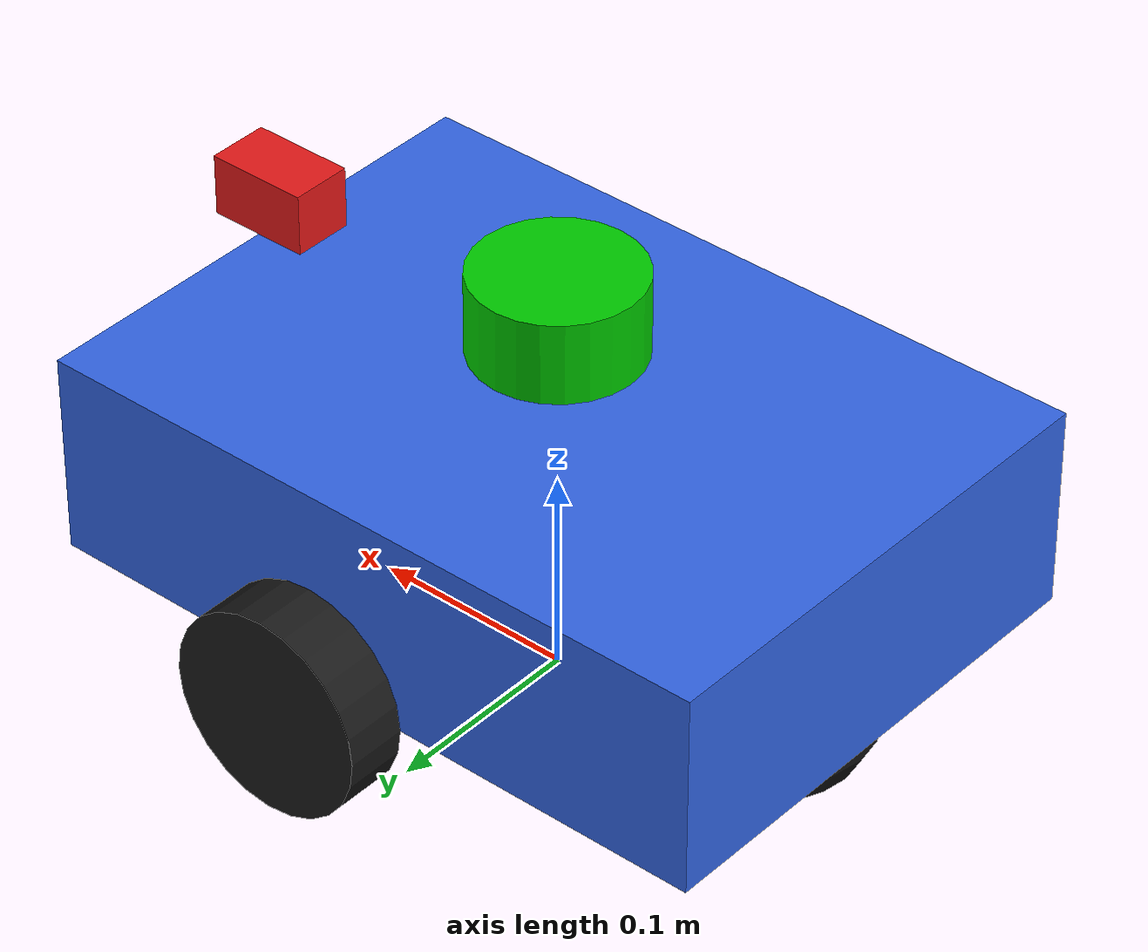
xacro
<?xml version="1.0"?>

<robot xmlns:xacro="http://www.ros.org/wiki/xacro"
    name="furbo">

        <material name="blue">
            <color rgba="0.2 0.4 0.9 1"/>
        </material>

        <material name="black">
            <color rgba="0.1 0.1 0.1 1"/>
        </material>

        <material name="green">
            <color rgba="0.0 0.8 0.0 1"/>
        </material>

        <material name="red">
            <color rgba="0.9 0.1 0.1 1"/>
        </material>

        <material name="orange">
            <color rgba="1.0 0.5 0.0 1"/>
        </material>

        <material name="yellow">
            <color rgba="1.0 1.0 0.0 1"/>
        </material>

        <material name="gray">
            <color rgba="0.6 0.6 0.6 1"/>
        </material>

       <link name="base_footprint"/>

       <joint name="base_footprint_joint" type="fixed">
            <parent link="base_footprint"/>
            <child link="base_link"/>
            <origin xyz="0 0 0.10"/>
       </joint>

       <link name="base_link">
            <visual>
                <origin xyz="0 0 0" rpy="0 0 0"/>
                <geometry>
                <box size="0.35 0.25 0.10"/>
                </geometry>
                <material name="blue"/>
            </visual>

            <collision>
                <origin xyz="0 0 0" rpy="0 0 0"/>
                <geometry>
                <box size="0.35 0.25 0.10"/>
                </geometry>
            </collision>

            <inertial>
                <origin xyz="0 0 0" rpy="0 0 0"/>
                <mass value="5.0"/>
                <inertia ixx="0.0302"
                ixy="0.0"
                ixz="0.0"
                iyy="0.0552"
                iyz="0.0"
                izz="0.0771"/>
            </inertial>
       </link>

       <link name="left_wheel">
            <visual>
                <origin xyz="0 0 0" rpy="1.5708 0 0"/>
                <geometry>
                    <cylinder radius="0.05" length="0.03"/>
                </geometry>
                <material name="black"/>
            </visual>

            <collision>
                <origin xyz="0 0 0" rpy="1.5708 0 0"/>
                <geometry>
                <cylinder radius="0.05" length="0.03"/>
                </geometry>
            </collision>

            <inertial>
                <mass value="0.3"/>
                <origin xyz="0 0 0"/>
                <inertia
                    ixx="0.0005"
                    ixy="0"
                    ixz="0"
                    iyy="0.0005"
                    iyz="0"
                    izz="0.0005"/>
            </inertial>
        </link>

       <joint name="left_wheel_joint" type="continuous">
            <parent link="base_link"/>
            <child link="left_wheel"/>
            <origin xyz="0.03 0.14 -0.05"/>
            <axis xyz="0 1 0"/>
            <limit effort="20" velocity="20"/>
            <dynamics damping="0.0" friction="0.0"/>
        </joint>

        <gazebo reference="left_wheel">
            <collision>
                <surface>
                    <friction>
                        <ode>
                            <mu>1.0</mu>
                            <mu2>1.0</mu2>
                        </ode>
                    </friction>
                </surface>
            </collision>
        </gazebo>

       <link name="right_wheel">
            <visual>
                <origin xyz="0 0 0" rpy="1.5708 0 0"/>

                <geometry>
                    <cylinder radius="0.05" length="0.03"/>
                </geometry>

                <material name="black"/>
            </visual>

            <collision>
                <origin xyz="0 0 0" rpy="1.5708 0 0"/>
                <geometry>
                    <cylinder radius="0.05" length="0.03"/>
                </geometry>
            </collision>

            <inertial>
                <mass value="0.3"/>
                <origin xyz="0 0 0"/>
                <inertia
                    ixx="0.0005"
                    ixy="0"
                    ixz="0"
                    iyy="0.0005"
                    iyz="0"
                    izz="0.0005"/>
            </inertial>
       </link>

       <joint name="right_wheel_joint" type="continuous">
            <parent link="base_link"/>
            <child link="right_wheel"/>
            <origin xyz="0.03 -0.14 -0.05"/>
            <axis xyz="0 1 0"/>
            <limit effort="20" velocity="20"/>
            <dynamics damping="0.0" friction="0.0"/>
        </joint>

        <gazebo reference="left_wheel">
            <collision>
                <surface>
                    <friction>
                        <ode>
                            <mu>1.0</mu>
                            <mu2>1.0</mu2>
                        </ode>
                    </friction>
                </surface>
            </collision>
        </gazebo>

       <link name="caster_wheel">
            <visual>
                <origin xyz="0 0 0"/>
                <geometry>
                    <sphere radius="0.05"/>
                </geometry>
                <material name="black"/>
            </visual>

            <collision>
                <origin xyz="0 0 0"/>
                <geometry>
                    <sphere radius="0.05"/>
                </geometry>
            </collision>

            <inertial>
                <origin xyz="0 0 0"/>
                <mass value="0.1"/>
                <inertia
                    ixx="0.0001"
                    ixy="0"
                    ixz="0"
                    iyy="0.0001"
                    iyz="0"
                    izz="0.0001"/>
            </inertial>
       </link>

       <joint name="caster_joint" type="fixed">
            <parent link="base_link"/>
            <child link="caster_wheel"/>
            <origin xyz="-0.12 0 -0.05"/>
       </joint>

       <link name="lidar_link">
            <visual>
                <origin xyz="0 0 0"/>

                <geometry>
                    <cylinder radius="0.04" length="0.04"/>
                </geometry>

                <material name="green"/>
            </visual>

            <collision>
                <origin xyz="0 0 0"/>

                <geometry>
                    <cylinder radius="0.04" length="0.04"/>
                </geometry>
            </collision>

            <inertial>
                <origin xyz="0 0 0"/>

                <mass value="0.2"/>

                <inertia
                    ixx="0.0002"
                    ixy="0"
                    ixz="0"
                    iyy="0.0002"
                    iyz="0"
                    izz="0.0002"/>
            </inertial>
       </link>

       <joint name="lidar_joint" type="fixed">
            <parent link="base_link"/>
            <child link="lidar_link"/>
            <origin xyz="0.00 0 0.09"/>
       </joint>

       <gazebo reference="lidar_link">
           <sensor name="lidar" type="gpu_lidar">
               <topic>scan</topic>
               <update_rate>10</update_rate>
               <lidar>
                   <scan>
                       <horizontal>
                           <samples>360</samples>
                           <min_angle>-3.14159</min_angle>
                           <max_angle>3.14159</max_angle>
                       </horizontal>
                   </scan>
                   <range>
                       <min>0.12</min>
                       <max>10.0</max>
                   </range>
               </lidar>
               <always_on>true</always_on>
           </sensor>
       </gazebo>

       <link name="imu_link">
            <visual>
                <geometry>
                    <box size="0.03 0.03 0.01"/>
                </geometry>
                <material name="orange"/>
            </visual>

            <collision>
                <geometry>
                    <box size="0.03 0.03 0.01"/>
                </geometry>
            </collision>

            <inertial>
                <mass value="0.05"/>

                <origin xyz="0 0 0"/>

                <inertia
                    ixx="0.00002"
                    ixy="0"
                    ixz="0"
                    iyy="0.00002"
                    iyz="0"
                    izz="0.00002"/>
            </inertial>
       </link>

       <joint name="imu_joint" type="fixed">
            <parent link="base_link"/>
            <child link="imu_link"/>
            <origin xyz="0 0 0.03"/>
       </joint>

       <gazebo reference="imu_link">
            <sensor name="imu_sensor" type="imu">
                <topic>imu</topic>
                <update_rate>100</update_rate>
                <always_on>true</always_on>
            </sensor>
        </gazebo>

       <link name="camera_link">
            <visual>
                <geometry>
                    <box size="0.05 0.03 0.03"/>
                </geometry>
                <material name="red"/>
            </visual>

            <inertial>
                <mass value="0.10"/>
                <origin xyz="0 0 0"/>
                <inertia
                    ixx="0.0001"
                    ixy="0"
                    ixz="0"
                    iyy="0.0001"
                    iyz="0"
                    izz="0.0001"/>
            </inertial>
       </link>

       <joint name="camera_joint" type="fixed">
            <parent link="base_link"/>
            <child link="camera_link"/>
            <origin xyz="0.16 0 0.08"/>
       </joint>

       <gazebo reference="camera_link">
            <sensor name="camera" type="camera">
                <pose>0.03 0 0 0 0 0</pose>
                <topic>camera/image_raw</topic>
                <update_rate>30</update_rate>
                <camera>
                    <horizontal_fov>1.047</horizontal_fov>
                    <image>
                        <width>640</width>
                        <height>480</height>
                    </image>
                    <clip>
                        <near>0.1</near>
                        <far>100</far>
                    </clip>
                </camera>
                <always_on>true</always_on>
            </sensor>
        </gazebo>

       <link name="camera_optical_frame"/>

       <joint name="camera_optical_joint" type="fixed">
            <parent link="camera_link"/>
            <child link="camera_optical_frame"/>
            <origin xyz="0 0 0"
                rpy="-1.5708 0 -1.5708"/>
       </joint>

       <ros2_control name="furbo_system" type="system">
            <hardware>
                <plugin>gz_ros2_control/GazeboSimSystem</plugin>
            </hardware>

            <joint name="left_wheel_joint">
                <command_interface name="velocity"/>
                <state_interface name="position"/>
                <state_interface name="velocity"/>
            </joint>

            <joint name="right_wheel_joint">
                <command_interface name="velocity"/>
                <state_interface name="position"/>
                <state_interface name="velocity"/>
            </joint>
        </ros2_control>

        <gazebo>
            <plugin
                filename="gz_ros2_control-system"
                name="gz_ros2_control::GazeboSimROS2ControlPlugin">
                <parameters>$(find furbo_description)/config/controllers.yaml</parameters>
            </plugin>
        </gazebo>
</robot>
